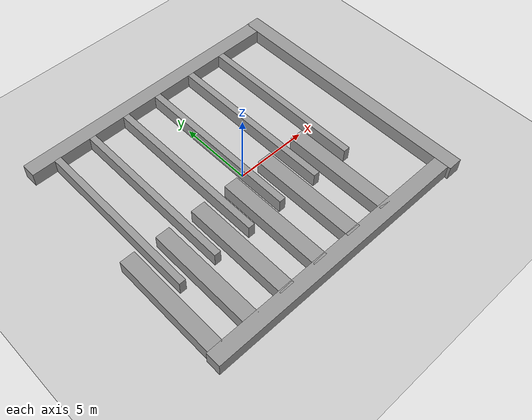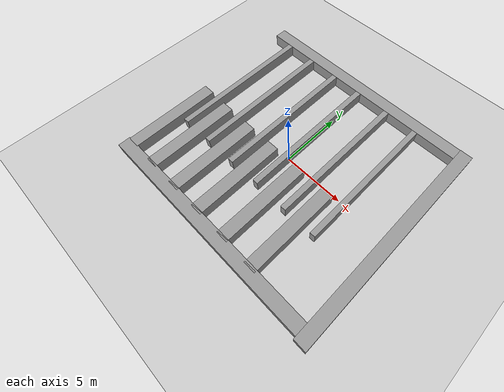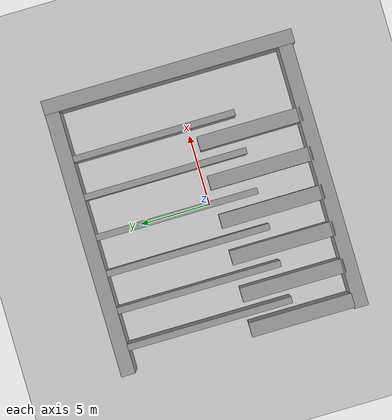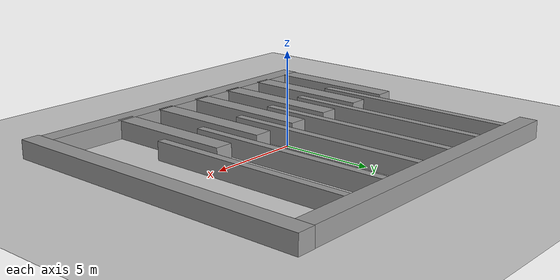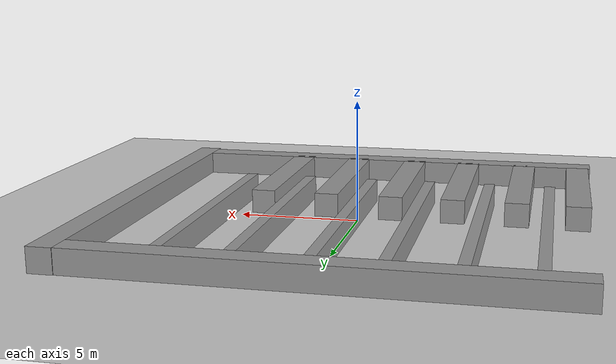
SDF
<sdf version="1.6">
 <world name="default">
  <light name="sun" type="directional">
   <pose>0 0 10 0 -0 0</pose>
   <diffuse>0.8 0.8 0.8 1</diffuse>
   <specular>0.1 0.1 0.1 1</specular>
   <attenuation>
    <range>1000</range>
    <constant>0.9</constant>
    <linear>0.01</linear>
    <quadratic>0.001</quadratic>
   </attenuation>
   <direction>-0.5 0.5 -1</direction>
  </light>
  <model name="ground_plane">
   <static>1</static>
   <link name="link">
    <collision name="collision">
     <geometry><plane><normal>0 0 1</normal><size>100 100</size></plane></geometry>
     <surface><friction><ode><mu>100</mu><mu2>50</mu2></ode></friction></surface>
    </collision>
    <visual name="visual">
     <cast_shadows>0</cast_shadows>
     <geometry><plane><normal>0 0 1</normal><size>100 100</size></plane></geometry>
     <material>
      <script><uri>file://media/materials/scripts/gazebo.material</uri><name>Gazebo/Grey</name></script>
     </material>
    </visual>
   </link>
  </model>
  <gravity>0 0 -9.8</gravity>
  <magnetic_field>6e-06 2.3e-05 -4.2e-05</magnetic_field>
  <atmosphere type="adiabatic"/>
  <physics name="default_physics" default="0" type="ode">
   <max_step_size>0.001</max_step_size>
   <real_time_factor>1</real_time_factor>
   <real_time_update_rate>1000</real_time_update_rate>
  </physics>
  <scene><ambient>0.4 0.4 0.4 1</ambient><background>0.7 0.7 0.7 1</background><shadows>1</shadows></scene>
  <spherical_coordinates>
   <surface_model>EARTH_WGS84</surface_model>
   <latitude_deg>0</latitude_deg>
   <longitude_deg>0</longitude_deg>
   <elevation>0</elevation>
   <heading_deg>0</heading_deg>
  </spherical_coordinates>
  <model name="unit_box_0_0">
   <link name="link">
    <pose>5.74989 -0.260478 3e-06 0 -0 0</pose>
    <inertial>
     <mass>19.2162</mass>
     <inertia><ixx>3.20271</ixx><ixy>0</ixy><ixz>0</ixz><iyy>592.925</iyy><iyz>0</iyz><izz>592.925</izz></inertia>
    </inertial>
    <visual name="visual">
     <geometry><box><size>19.2162 1 1</size></box></geometry>
     <material>
      <script><name>Gazebo/Grey</name><uri>file://media/materials/scripts/gazebo.material</uri></script>
      <ambient>0.3 0.3 0.3 1</ambient>
      <diffuse>0.7 0.7 0.7 1</diffuse>
      <specular>0.01 0.01 0.01 1</specular>
      <emissive>0 0 0 1</emissive>
     </material>
    </visual>
    <collision name="collision">
     <geometry><box><size>19.2162 1 1</size></box></geometry>
     <surface>
      <friction>
       <ode><mu>1</mu><mu2>1</mu2><fdir1>0 0 0</fdir1><slip1>0</slip1><slip2>0</slip2></ode>
       <torsional>
        <coefficient>1</coefficient>
        <patch_radius>0</patch_radius>
        <surface_radius>0</surface_radius>
        <use_patch_radius>1</use_patch_radius>
        <ode><slip>0</slip></ode>
       </torsional>
      </friction>
      <bounce><restitution_coefficient>0</restitution_coefficient><threshold>1e+06</threshold></bounce>
      <contact>
       <collide_without_contact>0</collide_without_contact>
       <collide_without_contact_bitmask>1</collide_without_contact_bitmask>
       <collide_bitmask>1</collide_bitmask>
       <ode>
        <soft_cfm>0</soft_cfm>
        <soft_erp>0.2</soft_erp>
        <kp>1e+13</kp>
        <kd>1</kd>
        <max_vel>0.01</max_vel>
        <min_depth>0</min_depth>
       </ode>
       <bullet>
        <split_impulse>1</split_impulse>
        <split_impulse_penetration_threshold>-0.01</split_impulse_penetration_threshold>
        <soft_cfm>0</soft_cfm>
        <soft_erp>0.2</soft_erp>
        <kp>1e+13</kp>
        <kd>1</kd>
       </bullet>
      </contact>
     </surface>
    </collision>
   </link>
   <link name="link_0">
    <pose>-3.27289 3.81781 -3.2e-05 -1e-05 0 0</pose>
    <inertial>
     <mass>7.30216</mass>
     <inertia><ixx>33.0555</ixx><ixy>0</ixy><ixz>0</ixz><iyy>1.21703</iyy><iyz>0</iyz><izz>33.0555</izz></inertia>
    </inertial>
    <visual name="visual">
     <geometry><box><size>1 7.30217 1</size></box></geometry>
     <material>
      <lighting>1</lighting>
      <script><uri>file://media/materials/scripts/gazebo.material</uri><name>Gazebo/Grey</name></script>
      <ambient>0.3 0.3 0.3 1</ambient>
      <diffuse>0.7 0.7 0.7 1</diffuse>
      <specular>0.01 0.01 0.01 1</specular>
      <emissive>0 0 0 1</emissive>
     </material>
    </visual>
    <collision name="collision">
     <geometry><box><size>1 7.30217 1</size></box></geometry>
     <surface>
      <friction>
       <ode><mu>1</mu><mu2>1</mu2><fdir1>0 0 0</fdir1><slip1>0</slip1><slip2>0</slip2></ode>
       <torsional>
        <coefficient>1</coefficient>
        <patch_radius>0</patch_radius>
        <surface_radius>0</surface_radius>
        <use_patch_radius>1</use_patch_radius>
        <ode><slip>0</slip></ode>
       </torsional>
      </friction>
      <bounce><restitution_coefficient>0</restitution_coefficient><threshold>1e+06</threshold></bounce>
      <contact>
       <collide_without_contact>0</collide_without_contact>
       <collide_without_contact_bitmask>1</collide_without_contact_bitmask>
       <collide_bitmask>1</collide_bitmask>
       <ode>
        <soft_cfm>0</soft_cfm>
        <soft_erp>0.2</soft_erp>
        <kp>1e+13</kp>
        <kd>1</kd>
        <max_vel>0.01</max_vel>
        <min_depth>0</min_depth>
       </ode>
       <bullet>
        <split_impulse>1</split_impulse>
        <split_impulse_penetration_threshold>-0.01</split_impulse_penetration_threshold>
        <soft_cfm>0</soft_cfm>
        <soft_erp>0.2</soft_erp>
        <kp>1e+13</kp>
        <kd>1</kd>
       </bullet>
      </contact>
     </surface>
    </collision>
   </link>
   <link name="link_0_clone">
    <pose>-0.819665 3.73887 -6.9e-05 -2e-05 0 0</pose>
    <inertial>
     <mass>7.30216</mass>
     <inertia><ixx>33.0555</ixx><ixy>0</ixy><ixz>0</ixz><iyy>1.21703</iyy><iyz>0</iyz><izz>33.0555</izz></inertia>
    </inertial>
    <visual name="visual">
     <geometry><box><size>1 7.30217 1</size></box></geometry>
     <material>
      <lighting>1</lighting>
      <script><uri>file://media/materials/scripts/gazebo.material</uri><name>Gazebo/Grey</name></script>
      <ambient>0.3 0.3 0.3 1</ambient>
      <diffuse>0.7 0.7 0.7 1</diffuse>
      <specular>0.01 0.01 0.01 1</specular>
      <emissive>0 0 0 1</emissive>
      <shader type="pixel"/>
     </material>
    </visual>
    <collision name="collision">
     <geometry><box><size>1 7.30217 1</size></box></geometry>
     <surface>
      <friction>
       <ode><mu>1</mu><mu2>1</mu2><fdir1>0 0 0</fdir1><slip1>0</slip1><slip2>0</slip2></ode>
       <torsional>
        <coefficient>1</coefficient>
        <patch_radius>0</patch_radius>
        <surface_radius>0</surface_radius>
        <use_patch_radius>1</use_patch_radius>
        <ode><slip>0</slip></ode>
       </torsional>
      </friction>
      <bounce><restitution_coefficient>0</restitution_coefficient><threshold>1e+06</threshold></bounce>
      <contact>
       <collide_without_contact>0</collide_without_contact>
       <collide_without_contact_bitmask>1</collide_without_contact_bitmask>
       <collide_bitmask>1</collide_bitmask>
       <ode>
        <soft_cfm>0</soft_cfm>
        <soft_erp>0.2</soft_erp>
        <kp>1e+13</kp>
        <kd>1</kd>
        <max_vel>0.01</max_vel>
        <min_depth>0</min_depth>
       </ode>
       <bullet>
        <split_impulse>1</split_impulse>
        <split_impulse_penetration_threshold>-0.01</split_impulse_penetration_threshold>
        <soft_cfm>0</soft_cfm>
        <soft_erp>0.2</soft_erp>
        <kp>1e+13</kp>
        <kd>1</kd>
       </bullet>
      </contact>
     </surface>
    </collision>
   </link>
   <link name="link_0_clone_0">
    <pose>1.80622 3.7104 -6.8e-05 -2e-05 0 0</pose>
    <inertial>
     <mass>7.30216</mass>
     <inertia><ixx>33.0555</ixx><ixy>0</ixy><ixz>0</ixz><iyy>1.21703</iyy><iyz>0</iyz><izz>33.0555</izz></inertia>
    </inertial>
    <visual name="visual">
     <geometry><box><size>1 7.30217 1</size></box></geometry>
     <material>
      <lighting>1</lighting>
      <script><uri>file://media/materials/scripts/gazebo.material</uri><name>Gazebo/Grey</name></script>
      <ambient>0.3 0.3 0.3 1</ambient>
      <diffuse>0.7 0.7 0.7 1</diffuse>
      <specular>0.01 0.01 0.01 1</specular>
      <emissive>0 0 0 1</emissive>
      <shader type="pixel"/>
     </material>
    </visual>
    <collision name="collision">
     <geometry><box><size>1 7.30217 1</size></box></geometry>
     <surface>
      <friction>
       <ode><mu>1</mu><mu2>1</mu2><fdir1>0 0 0</fdir1><slip1>0</slip1><slip2>0</slip2></ode>
       <torsional>
        <coefficient>1</coefficient>
        <patch_radius>0</patch_radius>
        <surface_radius>0</surface_radius>
        <use_patch_radius>1</use_patch_radius>
        <ode><slip>0</slip></ode>
       </torsional>
      </friction>
      <bounce><restitution_coefficient>0</restitution_coefficient><threshold>1e+06</threshold></bounce>
      <contact>
       <collide_without_contact>0</collide_without_contact>
       <collide_without_contact_bitmask>1</collide_without_contact_bitmask>
       <collide_bitmask>1</collide_bitmask>
       <ode>
        <soft_cfm>0</soft_cfm>
        <soft_erp>0.2</soft_erp>
        <kp>1e+13</kp>
        <kd>1</kd>
        <max_vel>0.01</max_vel>
        <min_depth>0</min_depth>
       </ode>
       <bullet>
        <split_impulse>1</split_impulse>
        <split_impulse_penetration_threshold>-0.01</split_impulse_penetration_threshold>
        <soft_cfm>0</soft_cfm>
        <soft_erp>0.2</soft_erp>
        <kp>1e+13</kp>
        <kd>1</kd>
       </bullet>
      </contact>
     </surface>
    </collision>
   </link>
   <link name="link_0_clone_1">
    <pose>4.40333 3.70975 -6.8e-05 -2e-05 0 0</pose>
    <inertial>
     <mass>7.30216</mass>
     <inertia><ixx>33.0555</ixx><ixy>0</ixy><ixz>0</ixz><iyy>1.21703</iyy><iyz>0</iyz><izz>33.0555</izz></inertia>
    </inertial>
    <visual name="visual">
     <geometry><box><size>1 7.30217 1</size></box></geometry>
     <material>
      <lighting>1</lighting>
      <script><uri>file://media/materials/scripts/gazebo.material</uri><name>Gazebo/Grey</name></script>
      <ambient>0.3 0.3 0.3 1</ambient>
      <diffuse>0.7 0.7 0.7 1</diffuse>
      <specular>0.01 0.01 0.01 1</specular>
      <emissive>0 0 0 1</emissive>
      <shader type="pixel"/>
     </material>
    </visual>
    <collision name="collision">
     <geometry><box><size>1 7.30217 1</size></box></geometry>
     <surface>
      <friction>
       <ode><mu>1</mu><mu2>1</mu2><fdir1>0 0 0</fdir1><slip1>0</slip1><slip2>0</slip2></ode>
       <torsional>
        <coefficient>1</coefficient>
        <patch_radius>0</patch_radius>
        <surface_radius>0</surface_radius>
        <use_patch_radius>1</use_patch_radius>
        <ode><slip>0</slip></ode>
       </torsional>
      </friction>
      <bounce><restitution_coefficient>0</restitution_coefficient><threshold>1e+06</threshold></bounce>
      <contact>
       <collide_without_contact>0</collide_without_contact>
       <collide_without_contact_bitmask>1</collide_without_contact_bitmask>
       <collide_bitmask>1</collide_bitmask>
       <ode>
        <soft_cfm>0</soft_cfm>
        <soft_erp>0.2</soft_erp>
        <kp>1e+13</kp>
        <kd>1</kd>
        <max_vel>0.01</max_vel>
        <min_depth>0</min_depth>
       </ode>
       <bullet>
        <split_impulse>1</split_impulse>
        <split_impulse_penetration_threshold>-0.01</split_impulse_penetration_threshold>
        <soft_cfm>0</soft_cfm>
        <soft_erp>0.2</soft_erp>
        <kp>1e+13</kp>
        <kd>1</kd>
       </bullet>
      </contact>
     </surface>
    </collision>
   </link>
   <link name="link_0_clone_2">
    <pose>7.14435 3.71007 -6.8e-05 -2e-05 0 0</pose>
    <inertial>
     <mass>7.30216</mass>
     <inertia><ixx>33.0555</ixx><ixy>0</ixy><ixz>0</ixz><iyy>1.21703</iyy><iyz>0</iyz><izz>33.0555</izz></inertia>
    </inertial>
    <visual name="visual">
     <geometry><box><size>1 7.30217 1</size></box></geometry>
     <material>
      <lighting>1</lighting>
      <script><uri>file://media/materials/scripts/gazebo.material</uri><name>Gazebo/Grey</name></script>
      <ambient>0.3 0.3 0.3 1</ambient>
      <diffuse>0.7 0.7 0.7 1</diffuse>
      <specular>0.01 0.01 0.01 1</specular>
      <emissive>0 0 0 1</emissive>
      <shader type="pixel"/>
     </material>
    </visual>
    <collision name="collision">
     <geometry><box><size>1 7.30217 1</size></box></geometry>
     <surface>
      <friction>
       <ode><mu>1</mu><mu2>1</mu2><fdir1>0 0 0</fdir1><slip1>0</slip1><slip2>0</slip2></ode>
       <torsional>
        <coefficient>1</coefficient>
        <patch_radius>0</patch_radius>
        <surface_radius>0</surface_radius>
        <use_patch_radius>1</use_patch_radius>
        <ode><slip>0</slip></ode>
       </torsional>
      </friction>
      <bounce><restitution_coefficient>0</restitution_coefficient><threshold>1e+06</threshold></bounce>
      <contact>
       <collide_without_contact>0</collide_without_contact>
       <collide_without_contact_bitmask>1</collide_without_contact_bitmask>
       <collide_bitmask>1</collide_bitmask>
       <ode>
        <soft_cfm>0</soft_cfm>
        <soft_erp>0.2</soft_erp>
        <kp>1e+13</kp>
        <kd>1</kd>
        <max_vel>0.01</max_vel>
        <min_depth>0</min_depth>
       </ode>
       <bullet>
        <split_impulse>1</split_impulse>
        <split_impulse_penetration_threshold>-0.01</split_impulse_penetration_threshold>
        <soft_cfm>0</soft_cfm>
        <soft_erp>0.2</soft_erp>
        <kp>1e+13</kp>
        <kd>1</kd>
       </bullet>
      </contact>
     </surface>
    </collision>
   </link>
   <link name="link_0_clone_3">
    <pose>9.91412 3.65217 -6.8e-05 -2e-05 0 0</pose>
    <inertial>
     <mass>7.30216</mass>
     <inertia><ixx>33.0555</ixx><ixy>0</ixy><ixz>0</ixz><iyy>1.21703</iyy><iyz>0</iyz><izz>33.0555</izz></inertia>
    </inertial>
    <visual name="visual">
     <geometry><box><size>1 7.30217 1</size></box></geometry>
     <material>
      <lighting>1</lighting>
      <script><uri>file://media/materials/scripts/gazebo.material</uri><name>Gazebo/Grey</name></script>
      <ambient>0.3 0.3 0.3 1</ambient>
      <diffuse>0.7 0.7 0.7 1</diffuse>
      <specular>0.01 0.01 0.01 1</specular>
      <emissive>0 0 0 1</emissive>
      <shader type="pixel"/>
     </material>
    </visual>
    <collision name="collision">
     <geometry><box><size>1 7.30217 1</size></box></geometry>
     <surface>
      <friction>
       <ode><mu>1</mu><mu2>1</mu2><fdir1>0 0 0</fdir1><slip1>0</slip1><slip2>0</slip2></ode>
       <torsional>
        <coefficient>1</coefficient>
        <patch_radius>0</patch_radius>
        <surface_radius>0</surface_radius>
        <use_patch_radius>1</use_patch_radius>
        <ode><slip>0</slip></ode>
       </torsional>
      </friction>
      <bounce><restitution_coefficient>0</restitution_coefficient><threshold>1e+06</threshold></bounce>
      <contact>
       <collide_without_contact>0</collide_without_contact>
       <collide_without_contact_bitmask>1</collide_without_contact_bitmask>
       <collide_bitmask>1</collide_bitmask>
       <ode>
        <soft_cfm>0</soft_cfm>
        <soft_erp>0.2</soft_erp>
        <kp>1e+13</kp>
        <kd>1</kd>
        <max_vel>0.01</max_vel>
        <min_depth>0</min_depth>
       </ode>
       <bullet>
        <split_impulse>1</split_impulse>
        <split_impulse_penetration_threshold>-0.01</split_impulse_penetration_threshold>
        <soft_cfm>0</soft_cfm>
        <soft_erp>0.2</soft_erp>
        <kp>1e+13</kp>
        <kd>1</kd>
       </bullet>
      </contact>
     </surface>
    </collision>
   </link>
   <link name="link_1">
    <pose>15.2078 7.94441 -7.3e-05 -1e-05 0 0</pose>
    <inertial>
     <mass>17.784</mass>
     <inertia><ixx>470.194</ixx><ixy>0</ixy><ixz>0</ixz><iyy>2.964</iyy><iyz>0</iyz><izz>470.194</izz></inertia>
    </inertial>
    <visual name="visual">
     <geometry><box><size>1 17.784 1</size></box></geometry>
     <material>
      <lighting>1</lighting>
      <script><uri>file://media/materials/scripts/gazebo.material</uri><name>Gazebo/Grey</name></script>
      <ambient>0.3 0.3 0.3 1</ambient>
      <diffuse>0.7 0.7 0.7 1</diffuse>
      <specular>0.01 0.01 0.01 1</specular>
      <emissive>0 0 0 1</emissive>
     </material>
    </visual>
    <collision name="collision">
     <geometry><box><size>1 17.784 1</size></box></geometry>
     <surface>
      <friction>
       <ode><mu>1</mu><mu2>1</mu2><fdir1>0 0 0</fdir1><slip1>0</slip1><slip2>0</slip2></ode>
       <torsional>
        <coefficient>1</coefficient>
        <patch_radius>0</patch_radius>
        <surface_radius>0</surface_radius>
        <use_patch_radius>1</use_patch_radius>
        <ode><slip>0</slip></ode>
       </torsional>
      </friction>
      <bounce><restitution_coefficient>0</restitution_coefficient><threshold>1e+06</threshold></bounce>
      <contact>
       <collide_without_contact>0</collide_without_contact>
       <collide_without_contact_bitmask>1</collide_without_contact_bitmask>
       <collide_bitmask>1</collide_bitmask>
       <ode>
        <soft_cfm>0</soft_cfm>
        <soft_erp>0.2</soft_erp>
        <kp>1e+13</kp>
        <kd>1</kd>
        <max_vel>0.01</max_vel>
        <min_depth>0</min_depth>
       </ode>
       <bullet>
        <split_impulse>1</split_impulse>
        <split_impulse_penetration_threshold>-0.01</split_impulse_penetration_threshold>
        <soft_cfm>0</soft_cfm>
        <soft_erp>0.2</soft_erp>
        <kp>1e+13</kp>
        <kd>1</kd>
       </bullet>
      </contact>
     </surface>
    </collision>
   </link>
   <link name="link_2">
    <pose>-2.06985 10.0047 -9.3e-05 -1e-05 0 0</pose>
    <inertial>
     <mass>5.25763</mass>
     <inertia><ixx>60.0506</ixx><ixy>0</ixy><ixz>0</ixz><iyy>0.527152</iyy><iyz>0</iyz><izz>59.7014</izz></inertia>
    </inertial>
    <visual name="visual">
     <geometry><box><size>0.450742 11.6644 1</size></box></geometry>
     <material>
      <lighting>1</lighting>
      <script><uri>file://media/materials/scripts/gazebo.material</uri><name>Gazebo/Grey</name></script>
      <ambient>0.3 0.3 0.3 1</ambient>
      <diffuse>0.7 0.7 0.7 1</diffuse>
      <specular>0.01 0.01 0.01 1</specular>
      <emissive>0 0 0 1</emissive>
     </material>
    </visual>
    <collision name="collision">
     <geometry><box><size>0.450742 11.6644 1</size></box></geometry>
     <surface>
      <friction>
       <ode><mu>1</mu><mu2>1</mu2><fdir1>0 0 0</fdir1><slip1>0</slip1><slip2>0</slip2></ode>
       <torsional>
        <coefficient>1</coefficient>
        <patch_radius>0</patch_radius>
        <surface_radius>0</surface_radius>
        <use_patch_radius>1</use_patch_radius>
        <ode><slip>0</slip></ode>
       </torsional>
      </friction>
      <bounce><restitution_coefficient>0</restitution_coefficient><threshold>1e+06</threshold></bounce>
      <contact>
       <collide_without_contact>0</collide_without_contact>
       <collide_without_contact_bitmask>1</collide_without_contact_bitmask>
       <collide_bitmask>1</collide_bitmask>
       <ode>
        <soft_cfm>0</soft_cfm>
        <soft_erp>0.2</soft_erp>
        <kp>1e+13</kp>
        <kd>1</kd>
        <max_vel>0.01</max_vel>
        <min_depth>0</min_depth>
       </ode>
       <bullet>
        <split_impulse>1</split_impulse>
        <split_impulse_penetration_threshold>-0.01</split_impulse_penetration_threshold>
        <soft_cfm>0</soft_cfm>
        <soft_erp>0.2</soft_erp>
        <kp>1e+13</kp>
        <kd>1</kd>
       </bullet>
      </contact>
     </surface>
    </collision>
   </link>
   <link name="link_2_clone">
    <pose>0.519457 10.0409 -0.000191 -2e-05 0 0</pose>
    <inertial>
     <mass>5.25763</mass>
     <inertia><ixx>60.0506</ixx><ixy>0</ixy><ixz>0</ixz><iyy>0.527152</iyy><iyz>0</iyz><izz>59.7014</izz></inertia>
    </inertial>
    <visual name="visual">
     <geometry><box><size>0.450742 11.6644 1</size></box></geometry>
     <material>
      <lighting>1</lighting>
      <script><uri>file://media/materials/scripts/gazebo.material</uri><name>Gazebo/Grey</name></script>
      <ambient>0.3 0.3 0.3 1</ambient>
      <diffuse>0.7 0.7 0.7 1</diffuse>
      <specular>0.01 0.01 0.01 1</specular>
      <emissive>0 0 0 1</emissive>
      <shader type="pixel"/>
     </material>
    </visual>
    <collision name="collision">
     <geometry><box><size>0.450742 11.6644 1</size></box></geometry>
     <surface>
      <friction>
       <ode><mu>1</mu><mu2>1</mu2><fdir1>0 0 0</fdir1><slip1>0</slip1><slip2>0</slip2></ode>
       <torsional>
        <coefficient>1</coefficient>
        <patch_radius>0</patch_radius>
        <surface_radius>0</surface_radius>
        <use_patch_radius>1</use_patch_radius>
        <ode><slip>0</slip></ode>
       </torsional>
      </friction>
      <bounce><restitution_coefficient>0</restitution_coefficient><threshold>1e+06</threshold></bounce>
      <contact>
       <collide_without_contact>0</collide_without_contact>
       <collide_without_contact_bitmask>1</collide_without_contact_bitmask>
       <collide_bitmask>1</collide_bitmask>
       <ode>
        <soft_cfm>0</soft_cfm>
        <soft_erp>0.2</soft_erp>
        <kp>1e+13</kp>
        <kd>1</kd>
        <max_vel>0.01</max_vel>
        <min_depth>0</min_depth>
       </ode>
       <bullet>
        <split_impulse>1</split_impulse>
        <split_impulse_penetration_threshold>-0.01</split_impulse_penetration_threshold>
        <soft_cfm>0</soft_cfm>
        <soft_erp>0.2</soft_erp>
        <kp>1e+13</kp>
        <kd>1</kd>
       </bullet>
      </contact>
     </surface>
    </collision>
   </link>
   <link name="link_2_clone_0">
    <pose>3.15004 10.0721 -0.000192 -2e-05 0 0</pose>
    <inertial>
     <mass>5.25763</mass>
     <inertia><ixx>60.0506</ixx><ixy>0</ixy><ixz>0</ixz><iyy>0.527152</iyy><iyz>0</iyz><izz>59.7014</izz></inertia>
    </inertial>
    <visual name="visual">
     <geometry><box><size>0.450742 11.6644 1</size></box></geometry>
     <material>
      <lighting>1</lighting>
      <script><uri>file://media/materials/scripts/gazebo.material</uri><name>Gazebo/Grey</name></script>
      <ambient>0.3 0.3 0.3 1</ambient>
      <diffuse>0.7 0.7 0.7 1</diffuse>
      <specular>0.01 0.01 0.01 1</specular>
      <emissive>0 0 0 1</emissive>
      <shader type="pixel"/>
     </material>
    </visual>
    <collision name="collision">
     <geometry><box><size>0.450742 11.6644 1</size></box></geometry>
     <surface>
      <friction>
       <ode><mu>1</mu><mu2>1</mu2><fdir1>0 0 0</fdir1><slip1>0</slip1><slip2>0</slip2></ode>
       <torsional>
        <coefficient>1</coefficient>
        <patch_radius>0</patch_radius>
        <surface_radius>0</surface_radius>
        <use_patch_radius>1</use_patch_radius>
        <ode><slip>0</slip></ode>
       </torsional>
      </friction>
      <bounce><restitution_coefficient>0</restitution_coefficient><threshold>1e+06</threshold></bounce>
      <contact>
       <collide_without_contact>0</collide_without_contact>
       <collide_without_contact_bitmask>1</collide_without_contact_bitmask>
       <collide_bitmask>1</collide_bitmask>
       <ode>
        <soft_cfm>0</soft_cfm>
        <soft_erp>0.2</soft_erp>
        <kp>1e+13</kp>
        <kd>1</kd>
        <max_vel>0.01</max_vel>
        <min_depth>0</min_depth>
       </ode>
       <bullet>
        <split_impulse>1</split_impulse>
        <split_impulse_penetration_threshold>-0.01</split_impulse_penetration_threshold>
        <soft_cfm>0</soft_cfm>
        <soft_erp>0.2</soft_erp>
        <kp>1e+13</kp>
        <kd>1</kd>
       </bullet>
      </contact>
     </surface>
    </collision>
   </link>
   <link name="link_2_clone_1">
    <pose>5.72711 10.1652 -0.000192 -2e-05 0 0</pose>
    <inertial>
     <mass>5.25763</mass>
     <inertia><ixx>60.0506</ixx><ixy>0</ixy><ixz>0</ixz><iyy>0.527152</iyy><iyz>0</iyz><izz>59.7014</izz></inertia>
    </inertial>
    <visual name="visual">
     <geometry><box><size>0.450742 11.6644 1</size></box></geometry>
     <material>
      <lighting>1</lighting>
      <script><uri>file://media/materials/scripts/gazebo.material</uri><name>Gazebo/Grey</name></script>
      <ambient>0.3 0.3 0.3 1</ambient>
      <diffuse>0.7 0.7 0.7 1</diffuse>
      <specular>0.01 0.01 0.01 1</specular>
      <emissive>0 0 0 1</emissive>
      <shader type="pixel"/>
     </material>
    </visual>
    <collision name="collision">
     <geometry><box><size>0.450742 11.6644 1</size></box></geometry>
     <surface>
      <friction>
       <ode><mu>1</mu><mu2>1</mu2><fdir1>0 0 0</fdir1><slip1>0</slip1><slip2>0</slip2></ode>
       <torsional>
        <coefficient>1</coefficient>
        <patch_radius>0</patch_radius>
        <surface_radius>0</surface_radius>
        <use_patch_radius>1</use_patch_radius>
        <ode><slip>0</slip></ode>
       </torsional>
      </friction>
      <bounce><restitution_coefficient>0</restitution_coefficient><threshold>1e+06</threshold></bounce>
      <contact>
       <collide_without_contact>0</collide_without_contact>
       <collide_without_contact_bitmask>1</collide_without_contact_bitmask>
       <collide_bitmask>1</collide_bitmask>
       <ode>
        <soft_cfm>0</soft_cfm>
        <soft_erp>0.2</soft_erp>
        <kp>1e+13</kp>
        <kd>1</kd>
        <max_vel>0.01</max_vel>
        <min_depth>0</min_depth>
       </ode>
       <bullet>
        <split_impulse>1</split_impulse>
        <split_impulse_penetration_threshold>-0.01</split_impulse_penetration_threshold>
        <soft_cfm>0</soft_cfm>
        <soft_erp>0.2</soft_erp>
        <kp>1e+13</kp>
        <kd>1</kd>
       </bullet>
      </contact>
     </surface>
    </collision>
   </link>
   <link name="link_2_clone_2">
    <pose>8.57238 10.118 -0.000192 -2e-05 0 0</pose>
    <inertial>
     <mass>5.25763</mass>
     <inertia><ixx>60.0506</ixx><ixy>0</ixy><ixz>0</ixz><iyy>0.527152</iyy><iyz>0</iyz><izz>59.7014</izz></inertia>
    </inertial>
    <visual name="visual">
     <geometry><box><size>0.450742 11.6644 1</size></box></geometry>
     <material>
      <lighting>1</lighting>
      <script><uri>file://media/materials/scripts/gazebo.material</uri><name>Gazebo/Grey</name></script>
      <ambient>0.3 0.3 0.3 1</ambient>
      <diffuse>0.7 0.7 0.7 1</diffuse>
      <specular>0.01 0.01 0.01 1</specular>
      <emissive>0 0 0 1</emissive>
      <shader type="vertex"><normal_map>__default__</normal_map></shader>
     </material>
    </visual>
    <collision name="collision">
     <geometry><box><size>0.450742 11.6644 1</size></box></geometry>
     <surface>
      <friction>
       <ode><mu>1</mu><mu2>1</mu2><fdir1>0 0 0</fdir1><slip1>0</slip1><slip2>0</slip2></ode>
       <torsional>
        <coefficient>1</coefficient>
        <patch_radius>0</patch_radius>
        <surface_radius>0</surface_radius>
        <use_patch_radius>1</use_patch_radius>
        <ode><slip>0</slip></ode>
       </torsional>
      </friction>
      <bounce><restitution_coefficient>0</restitution_coefficient><threshold>1e+06</threshold></bounce>
      <contact>
       <collide_without_contact>0</collide_without_contact>
       <collide_without_contact_bitmask>1</collide_without_contact_bitmask>
       <collide_bitmask>1</collide_bitmask>
       <ode>
        <soft_cfm>0</soft_cfm>
        <soft_erp>0.2</soft_erp>
        <kp>1e+13</kp>
        <kd>1</kd>
        <max_vel>0.01</max_vel>
        <min_depth>0</min_depth>
       </ode>
       <bullet>
        <split_impulse>1</split_impulse>
        <split_impulse_penetration_threshold>-0.01</split_impulse_penetration_threshold>
        <soft_cfm>0</soft_cfm>
        <soft_erp>0.2</soft_erp>
        <kp>1e+13</kp>
        <kd>1</kd>
       </bullet>
      </contact>
     </surface>
    </collision>
   </link>
   <link name="link_2_clone_3">
    <pose>11.2903 10.1581 -0.000192 -2e-05 0 0</pose>
    <inertial>
     <mass>5.25763</mass>
     <inertia><ixx>60.0506</ixx><ixy>0</ixy><ixz>0</ixz><iyy>0.527152</iyy><iyz>0</iyz><izz>59.7014</izz></inertia>
    </inertial>
    <visual name="visual">
     <geometry><box><size>0.450742 11.6644 1</size></box></geometry>
     <material>
      <lighting>1</lighting>
      <script><uri>file://media/materials/scripts/gazebo.material</uri><name>Gazebo/Grey</name></script>
      <ambient>0.3 0.3 0.3 1</ambient>
      <diffuse>0.7 0.7 0.7 1</diffuse>
      <specular>0.01 0.01 0.01 1</specular>
      <emissive>0 0 0 1</emissive>
      <shader type="pixel"/>
     </material>
    </visual>
    <collision name="collision">
     <geometry><box><size>0.450742 11.6644 1</size></box></geometry>
     <surface>
      <friction>
       <ode><mu>1</mu><mu2>1</mu2><fdir1>0 0 0</fdir1><slip1>0</slip1><slip2>0</slip2></ode>
       <torsional>
        <coefficient>1</coefficient>
        <patch_radius>0</patch_radius>
        <surface_radius>0</surface_radius>
        <use_patch_radius>1</use_patch_radius>
        <ode><slip>0</slip></ode>
       </torsional>
      </friction>
      <bounce><restitution_coefficient>0</restitution_coefficient><threshold>1e+06</threshold></bounce>
      <contact>
       <collide_without_contact>0</collide_without_contact>
       <collide_without_contact_bitmask>1</collide_without_contact_bitmask>
       <collide_bitmask>1</collide_bitmask>
       <ode>
        <soft_cfm>0</soft_cfm>
        <soft_erp>0.2</soft_erp>
        <kp>1e+13</kp>
        <kd>1</kd>
        <max_vel>0.01</max_vel>
        <min_depth>0</min_depth>
       </ode>
       <bullet>
        <split_impulse>1</split_impulse>
        <split_impulse_penetration_threshold>-0.01</split_impulse_penetration_threshold>
        <soft_cfm>0</soft_cfm>
        <soft_erp>0.2</soft_erp>
        <kp>1e+13</kp>
        <kd>1</kd>
       </bullet>
      </contact>
     </surface>
    </collision>
   </link>
   <link name="link_clone">
    <pose>5.72711 16.3112 -0.000157 -1e-05 0 0</pose>
    <inertial>
     <mass>19.2162</mass>
     <inertia><ixx>3.20271</ixx><ixy>0</ixy><ixz>0</ixz><iyy>592.925</iyy><iyz>0</iyz><izz>592.925</izz></inertia>
    </inertial>
    <visual name="visual">
     <geometry><box><size>19.2162 1 1</size></box></geometry>
     <material>
      <script><name>Gazebo/Grey</name><uri>file://media/materials/scripts/gazebo.material</uri></script>
      <ambient>0.3 0.3 0.3 1</ambient>
      <diffuse>0.7 0.7 0.7 1</diffuse>
      <specular>0.01 0.01 0.01 1</specular>
      <emissive>0 0 0 1</emissive>
      <shader type="pixel"/>
     </material>
    </visual>
    <collision name="collision">
     <geometry><box><size>19.2162 1 1</size></box></geometry>
     <surface>
      <friction>
       <ode><mu>1</mu><mu2>1</mu2><fdir1>0 0 0</fdir1><slip1>0</slip1><slip2>0</slip2></ode>
       <torsional>
        <coefficient>1</coefficient>
        <patch_radius>0</patch_radius>
        <surface_radius>0</surface_radius>
        <use_patch_radius>1</use_patch_radius>
        <ode><slip>0</slip></ode>
       </torsional>
      </friction>
      <bounce><restitution_coefficient>0</restitution_coefficient><threshold>1e+06</threshold></bounce>
      <contact>
       <collide_without_contact>0</collide_without_contact>
       <collide_without_contact_bitmask>1</collide_without_contact_bitmask>
       <collide_bitmask>1</collide_bitmask>
       <ode>
        <soft_cfm>0</soft_cfm>
        <soft_erp>0.2</soft_erp>
        <kp>1e+13</kp>
        <kd>1</kd>
        <max_vel>0.01</max_vel>
        <min_depth>0</min_depth>
       </ode>
       <bullet>
        <split_impulse>1</split_impulse>
        <split_impulse_penetration_threshold>-0.01</split_impulse_penetration_threshold>
        <soft_cfm>0</soft_cfm>
        <soft_erp>0.2</soft_erp>
        <kp>1e+13</kp>
        <kd>1</kd>
       </bullet>
      </contact>
     </surface>
    </collision>
   </link>
   <static>0</static>
   <pose>-5.72711 -7.73886 0.499995 1e-05 -0 0</pose>
  </model>
 </world>
</sdf>
